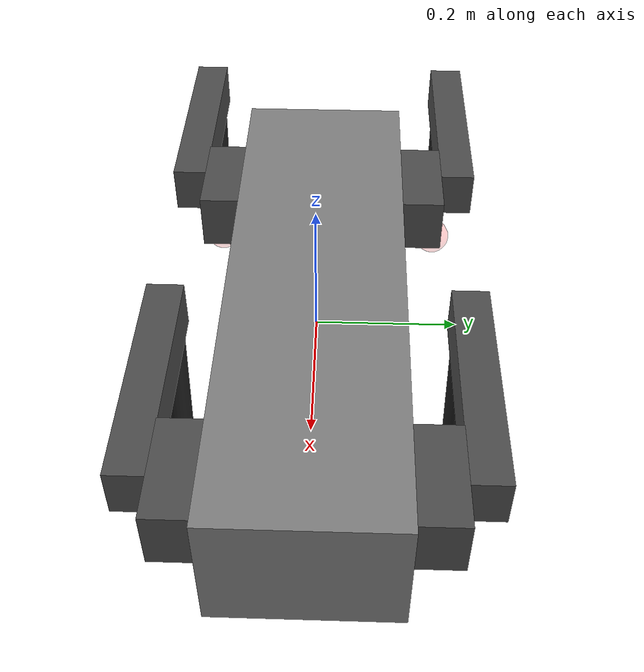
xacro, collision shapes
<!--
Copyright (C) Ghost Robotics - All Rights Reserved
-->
<?xml version="1.0" encoding="utf-8"?>
<!-- |    This document was autogenerated by xacro from C:/Gitlab-Runner/builds/7_uiAF6o/1/ghostrobotics/ghostsdkbuild/test_ws/src/controls/../SDK/urdf/vision60.urdf.xacro | -->
<!-- |    EDITING THIS FILE BY HAND IS NOT RECOMMENDED                                 | -->
<robot name="vision60" xmlns:xacro="http://www.ros.org/wiki/xacro">
  <!-- Define parameters -->
  <!-- body dynamic properties -->
  <!-- Toe -->
  <!-- Joint limits -->
  <!-- Define materials -->
  <material name="gray">
    <color rgba="0.5 0.5 0.5 1.0"/>
  </material>
  <material name="darkgray">
    <color rgba="0.3 0.3 0.3 1.0"/>
  </material>
  <material name="transparent">
    <color rgba="1.0 0.0 0.0 0.1"/>
  </material>
  <material name="blue">
    <color rgba="0 0 0.8 1"/>
  </material>
  <material name="black">
    <color rgba="0.1 0.1 0.1 1.0"/>
  </material>
  <material name="purple">
    <color rgba="0.5 0.0 0.5 1.0"/>
  </material>
  <material name="red">
    <color rgba="0.8 0.0 0.2 1.0"/>
  </material>
  <!-- Body -->
  <link name="body">
    <visual>
      <origin rpy="0 0 0" xyz="0 0 0"/>
      <geometry>
        <mesh filename="package://vision60_description/models/vision60/meshes/v5_body_decimated.stl" scale="1.0 1.0 1.0"/>
      </geometry>
      <material name="gray"/>
    </visual>
    <inertial>
      <mass value="25"/>
      <inertia ixx="0.0986" ixy="0" ixz="0" iyy="0.8105" iyz="0" izz="0.8369"/>
    </inertial>
    <!-- Just copy geometry for collision -->
    <collision>
      <origin rpy="0 0 0" xyz="0 0 0"/>
      <geometry>
        <box size="0.83 0.25 0.19"/>
      </geometry>
    </collision>
  </link>

  <gazebo reference="body">
    <gravity>true</gravity>
    <sensor name="imu_sensor" type="imu">
      <always_on>true</always_on>
      <visualize>true</visualize>
      <topic>__default_topic_</topic>
      <plugin filename="libgazebo_ros_imu_sensor.so" name="imu_plugin">
        <topicName>imu</topicName>
        <bodyName>body</bodyName>
        <updateRateHZ>500.0</updateRateHZ>
        <gaussianNoise>0.0</gaussianNoise>
        <xyzOffset>0 0 0</xyzOffset>
        <rpyOffset>0 0 0</rpyOffset>
        <frameName>body</frameName>
        <initialOrientationAsReference>true</initialOrientationAsReference>
      </plugin>
      <pose>0 0 0 0 0 0</pose>
    </sensor>
  </gazebo>
  <!-- Define our leg macro -->
  <!-- Our four legs -->
  <!-- Hip motor -->
  <link name="hip0">
    <visual>
      <origin rpy="0.0 0.0 0" xyz="0 0 0"/>
      <geometry>
        <mesh filename="package://vision60_description/models/vision60/meshes/v5_pod_decimated.stl" scale="1.0 1.0 1.0"/>
      </geometry>
      <material name="darkgray"/>
    </visual>
    <collision>
      <origin rpy="1.570796326795 0 0" xyz="-0.010000000000000009 0.019600000000000006 0"/>
      <geometry>
        <box size="0.15 0.09 0.15"/>
      </geometry>
    </collision>
    <inertial>
      <mass value="1.975"/>
      <inertia ixx="0.00891458" ixy="0" ixz="0" iyy="0.0100573" iyz="0" izz="0.01533698"/>
    </inertial>
  </link>
  <gazebo reference="hip0">
    <material>Gazebo/DarkGray</material>
  </gazebo>
  <!-- Abduction joint. Joint names are: 8 9 10 11 -->
  <joint name="8" type="revolute">
    <parent link="body"/>
    <child link="hip0"/>
    <axis xyz="1 0 0"/>
    <origin xyz="0.3075 0.1 0"/>
    <limit effort="375" lower="-0.43" upper="0.43" velocity="8.6"/>
    <dynamics damping="0.0" friction="0.0"/>
  </joint>
  <!-- Transmission elements required for Gazebo -->
  <transmission name="transmission_8">
    <type>transmission_interface/SimpleTransmission</type>
    <joint name="8">
      <hardwareInterface>hardware_interface/EffortJointInterface</hardwareInterface>
    </joint>
    <actuator name="motor_8">
      <hardwareInterface>EffortJointInterface</hardwareInterface>
      <mechanicalReduction>1</mechanicalReduction>
    </actuator>
  </transmission>
  <!-- Upper leg -->
  <link name="upper0">
    <visual>
      <origin rpy="0 0 0" xyz="0 0 0"/>
      <geometry>
        <mesh filename="package://vision60_description/models/vision60/meshes/v5_left_upper_decimated.stl" scale="1.0 1.0 1.0"/>
      </geometry>
      <material name="darkgray"/>
    </visual>
    <collision>
      <origin rpy="0 0 0" xyz="-0.17 0 0"/>
      <geometry>
        <box size="0.34 0.055 0.075"/>
      </geometry>
    </collision>
    <inertial>
      <mass value="2.525"/>
      <inertia ixx="0.0003125" ixy="0" ixz="0" iyy="0.0040625" iyz="0" izz="0.0040625"/>
    </inertial>
  </link>
  <gazebo reference="upper0">
    <material>Gazebo/DarkGray</material>
  </gazebo>
  <!-- Hip joint. (Motor to upper leg). Joint names are: 0 2 4 6 -->
  <joint name="0" type="revolute">
    <parent link="hip0"/>
    <child link="upper0"/>
    <axis xyz="0 -1 0"/>
    <origin xyz="0 0.1221 0"/>
    <!--  rpy="0 -0.3 0" -->
    <limit effort="87.5" lower="-6.28" upper="6.28" velocity="30"/>
    <dynamics damping="0.0" friction="0.0"/>
  </joint>
  <!-- Transmission elements required for Gazebo -->
  <transmission name="transmission_0">
    <type>transmission_interface/SimpleTransmission</type>
    <joint name="0">
      <hardwareInterface>hardware_interface/EffortJointInterface</hardwareInterface>
    </joint>
    <actuator name="motor_0">
      <hardwareInterface>EffortJointInterface</hardwareInterface>
      <mechanicalReduction>1</mechanicalReduction>
    </actuator>
  </transmission>
  <!-- Lower leg -->
  <link name="lower0">
    <visual>
      <origin rpy="0 -0.13 0" xyz="0 0 0"/>
      <geometry>
        <mesh filename="package://vision60_description/models/vision60/meshes/v5_lower_decimated.stl" scale="1.0 1.0 1.0"/>
      </geometry>
      <material name="black"/>
    </visual>
    <collision>
      <origin rpy="0 1.570796326795 0" xyz="0.17035 0 0"/>
      <geometry>
        <cylinder length="0.3407" radius="0.02"/>
      </geometry>
    </collision>
    <inertial>
      <mass value="0.375"/>
      <inertia ixx="0.00131075" ixy="0" ixz="0" iyy="0.00131075" iyz="0" izz="0.0001"/>
    </inertial>
  </link>
  <gazebo reference="lower0">
    <material>Gazebo/Black</material>
  </gazebo>
  <!-- Knee joint. Joint names are: 1 3 5 7 -->
  <joint name="1" type="revolute">
    <parent link="upper0"/>
    <child link="lower0"/>
    <axis xyz="0 1 0"/>
    <origin xyz="-0.34 0 0"/>
    <!--rpy="0 0.5 0"-->
    <limit effort="87.5" lower="0.3" upper="2.6" velocity="30"/>
    <dynamics damping="0.0" friction="0.0"/>
  </joint>
  <!-- Transmission elements required for Gazebo -->
  <transmission name="transmission_1">
    <type>transmission_interface/SimpleTransmission</type>
    <joint name="1">
      <hardwareInterface>hardware_interface/EffortJointInterface</hardwareInterface>
    </joint>
    <actuator name="motor_1">
      <hardwareInterface>EffortJointInterface</hardwareInterface>
      <mechanicalReduction>1</mechanicalReduction>
    </actuator>
  </transmission>
  <!-- Toe -->
  <link name="toe0">
    <contact>
      <friction_anchor/>
      <stiffness value="30000.0"/>
      <damping value="1000.0"/>
      <rolling_friction value="0"/>
      <spinning_friction value="0.04"/>
      <lateral_friction value="3.0"/>
    </contact>
    <visual>
      <origin rpy="0 0 0" xyz="0 0 0"/>
      <geometry>
        <sphere radius="0.035"/>
      </geometry>
      <material name="transparent"/>
    </visual>
    <collision>
      <origin rpy="0 0 0" xyz="0 0 0"/>
      <geometry>
        <sphere radius="0.035"/>
      </geometry>
    </collision>
    <inertial>
      <mass value="0.15"/>
      <inertia ixx="0.000025" ixy="0" ixz="0" iyy="0.000025" iyz="0" izz="0.000025"/>
    </inertial>
  </link>
  <gazebo reference="toe0">
    <material>Gazebo/Transparent</material>
    <collision>
      <surface>
        <bounce>
          <restitution_coefficient>0</restitution_coefficient>
          <threshold>1e+06</threshold>
        </bounce>
        <friction>
          <torsional>
            <coefficient>0.3</coefficient>
          </torsional>
          <ode>
            <mu>20.0</mu>
            <mu2>10.0</mu2>
          </ode>
          <bullet>
            <rolling_friction>0.3</rolling_friction>
            <friction2>10.0</friction2>
          </bullet>
        </friction>
        <contact>
          <bullet>
            <kp>30000.0</kp>
            <kd>1000.0</kd>
          </bullet>
          <ode>
            <kp>30000.0</kp>
            <kd>1000.0</kd>
          </ode>
        </contact>
      </surface>
    </collision>
  </gazebo>
  <joint name="jtoe0" type="fixed">
    <parent link="lower0"/>
    <child link="toe0"/>
    <origin xyz="0.3407 0 0"/>
    <dynamics damping="0.0" friction="0.0"/>
  </joint>
  <!-- Hip motor -->
  <link name="hip1">
    <visual>
      <origin rpy="0.0 -3.14159265359 0" xyz="0 0 0"/>
      <geometry>
        <mesh filename="package://vision60_description/models/vision60/meshes/v5_pod_decimated.stl" scale="1.0 1.0 1.0"/>
      </geometry>
      <material name="darkgray"/>
    </visual>
    <collision>
      <origin rpy="1.570796326795 0 0" xyz="0.010000000000000009 0.019600000000000006 0"/>
      <geometry>
        <box size="0.15 0.09 0.15"/>
      </geometry>
    </collision>
    <inertial>
      <mass value="1.975"/>
      <inertia ixx="0.00891458" ixy="0" ixz="0" iyy="0.0100573" iyz="0" izz="0.01533698"/>
    </inertial>
  </link>
  <gazebo reference="hip1">
    <material>Gazebo/DarkGray</material>
  </gazebo>
  <!-- Abduction joint. Joint names are: 8 9 10 11 -->
  <joint name="9" type="revolute">
    <parent link="body"/>
    <child link="hip1"/>
    <axis xyz="1 0 0"/>
    <origin xyz="-0.3075 0.1 0"/>
    <limit effort="375" lower="-0.43" upper="0.43" velocity="8.6"/>
    <dynamics damping="0.0" friction="0.0"/>
  </joint>
  <!-- Transmission elements required for Gazebo -->
  <transmission name="transmission_9">
    <type>transmission_interface/SimpleTransmission</type>
    <joint name="9">
      <hardwareInterface>hardware_interface/EffortJointInterface</hardwareInterface>
    </joint>
    <actuator name="motor_9">
      <hardwareInterface>EffortJointInterface</hardwareInterface>
      <mechanicalReduction>1</mechanicalReduction>
    </actuator>
  </transmission>
  <!-- Upper leg -->
  <link name="upper1">
    <visual>
      <origin rpy="0 0 0" xyz="0 0 0"/>
      <geometry>
        <mesh filename="package://vision60_description/models/vision60/meshes/v5_left_upper_decimated.stl" scale="1.0 1.0 1.0"/>
      </geometry>
      <material name="darkgray"/>
    </visual>
    <collision>
      <origin rpy="0 0 0" xyz="-0.17 0 0"/>
      <geometry>
        <box size="0.34 0.055 0.075"/>
      </geometry>
    </collision>
    <inertial>
      <mass value="2.525"/>
      <inertia ixx="0.0003125" ixy="0" ixz="0" iyy="0.0040625" iyz="0" izz="0.0040625"/>
    </inertial>
  </link>
  <gazebo reference="upper1">
    <material>Gazebo/DarkGray</material>
  </gazebo>
  <!-- Hip joint. (Motor to upper leg). Joint names are: 0 2 4 6 -->
  <joint name="2" type="revolute">
    <parent link="hip1"/>
    <child link="upper1"/>
    <axis xyz="0 -1 0"/>
    <origin xyz="0 0.1221 0"/>
    <!--  rpy="0 -0.3 0" -->
    <limit effort="87.5" lower="-3.8" upper="2.27" velocity="30"/>
    <dynamics damping="0.0" friction="0.0"/>
  </joint>
  <!-- Transmission elements required for Gazebo -->
  <transmission name="transmission_2">
    <type>transmission_interface/SimpleTransmission</type>
    <joint name="2">
      <hardwareInterface>hardware_interface/EffortJointInterface</hardwareInterface>
    </joint>
    <actuator name="motor_2">
      <hardwareInterface>EffortJointInterface</hardwareInterface>
      <mechanicalReduction>1</mechanicalReduction>
    </actuator>
  </transmission>
  <!-- Lower leg -->
  <link name="lower1">
    <visual>
      <origin rpy="0 -0.13 0" xyz="0 0 0"/>
      <geometry>
        <mesh filename="package://vision60_description/models/vision60/meshes/v5_lower_decimated.stl" scale="1.0 1.0 1.0"/>
      </geometry>
      <material name="black"/>
    </visual>
    <collision>
      <origin rpy="0 1.570796326795 0" xyz="0.17035 0 0"/>
      <geometry>
        <cylinder length="0.3407" radius="0.02"/>
      </geometry>
    </collision>
    <inertial>
      <mass value="0.375"/>
      <inertia ixx="0.00131075" ixy="0" ixz="0" iyy="0.00131075" iyz="0" izz="0.0001"/>
    </inertial>
  </link>
  <gazebo reference="lower1">
    <material>Gazebo/Black</material>
  </gazebo>
  <!-- Knee joint. Joint names are: 1 3 5 7 -->
  <joint name="3" type="revolute">
    <parent link="upper1"/>
    <child link="lower1"/>
    <axis xyz="0 1 0"/>
    <origin xyz="-0.34 0 0"/>
    <!--rpy="0 0.5 0"-->
    <limit effort="87.5" lower="0.3" upper="2.6" velocity="30"/>
    <dynamics damping="0.0" friction="0.0"/>
  </joint>
  <!-- Transmission elements required for Gazebo -->
  <transmission name="transmission_3">
    <type>transmission_interface/SimpleTransmission</type>
    <joint name="3">
      <hardwareInterface>hardware_interface/EffortJointInterface</hardwareInterface>
    </joint>
    <actuator name="motor_3">
      <hardwareInterface>EffortJointInterface</hardwareInterface>
      <mechanicalReduction>1</mechanicalReduction>
    </actuator>
  </transmission>
  <!-- Toe -->
  <link name="toe1">
    <contact>
      <friction_anchor/>
      <stiffness value="30000.0"/>
      <damping value="1000.0"/>
      <rolling_friction value="0"/>
      <spinning_friction value="0.04"/>
      <lateral_friction value="3.0"/>
    </contact>
    <visual>
      <origin rpy="0 0 0" xyz="0 0 0"/>
      <geometry>
        <sphere radius="0.035"/>
      </geometry>
      <material name="transparent"/>
    </visual>
    <collision>
      <origin rpy="0 0 0" xyz="0 0 0"/>
      <geometry>
        <sphere radius="0.035"/>
      </geometry>
    </collision>
    <inertial>
      <mass value="0.15"/>
      <inertia ixx="0.000025" ixy="0" ixz="0" iyy="0.000025" iyz="0" izz="0.000025"/>
    </inertial>
  </link>
  <gazebo reference="toe1">
    <material>Gazebo/Transparent</material>
    <collision>
      <surface>
        <bounce>
          <restitution_coefficient>0</restitution_coefficient>
          <threshold>1e+06</threshold>
        </bounce>
        <friction>
          <torsional>
            <coefficient>0.3</coefficient>
          </torsional>
          <ode>
            <mu>20.0</mu>
            <mu2>10.0</mu2>
          </ode>
          <bullet>
            <rolling_friction>0.3</rolling_friction>
            <friction2>10.0</friction2>
          </bullet>
        </friction>
        <contact>
          <bullet>
            <kp>30000.0</kp>
            <kd>1000.0</kd>
          </bullet>
          <ode>
            <kp>30000.0</kp>
            <kd>1000.0</kd>
          </ode>
        </contact>
      </surface>
    </collision>
  </gazebo>
  <joint name="jtoe1" type="fixed">
    <parent link="lower1"/>
    <child link="toe1"/>
    <origin xyz="0.3407 0 0"/>
    <dynamics damping="0.0" friction="0.0"/>
  </joint>
  <!-- Hip motor -->
  <link name="hip2">
    <visual>
      <origin rpy="-3.14159265359 0.0 0" xyz="0 0 0"/>
      <geometry>
        <mesh filename="package://vision60_description/models/vision60/meshes/v5_pod_decimated.stl" scale="1.0 1.0 1.0"/>
      </geometry>
      <material name="darkgray"/>
    </visual>
    <collision>
      <origin rpy="1.570796326795 0 0" xyz="-0.010000000000000009 -0.019600000000000006 0"/>
      <geometry>
        <box size="0.15 0.09 0.15"/>
      </geometry>
    </collision>
    <inertial>
      <mass value="1.975"/>
      <inertia ixx="0.00891458" ixy="0" ixz="0" iyy="0.0100573" iyz="0" izz="0.01533698"/>
    </inertial>
  </link>
  <gazebo reference="hip2">
    <material>Gazebo/DarkGray</material>
  </gazebo>
  <!-- Abduction joint. Joint names are: 8 9 10 11 -->
  <joint name="10" type="revolute">
    <parent link="body"/>
    <child link="hip2"/>
    <axis xyz="1 0 0"/>
    <origin xyz="0.3075 -0.1 0"/>
    <limit effort="375" lower="-0.43" upper="0.43" velocity="8.6"/>
    <dynamics damping="0.0" friction="0.0"/>
  </joint>
  <!-- Transmission elements required for Gazebo -->
  <transmission name="transmission_10">
    <type>transmission_interface/SimpleTransmission</type>
    <joint name="10">
      <hardwareInterface>hardware_interface/EffortJointInterface</hardwareInterface>
    </joint>
    <actuator name="motor_10">
      <hardwareInterface>EffortJointInterface</hardwareInterface>
      <mechanicalReduction>1</mechanicalReduction>
    </actuator>
  </transmission>
  <!-- Upper leg -->
  <link name="upper2">
    <visual>
      <origin rpy="0 0 0" xyz="0 0 0"/>
      <geometry>
        <mesh filename="package://vision60_description/models/vision60/meshes/v5_right_upper_decimated.stl" scale="1.0 1.0 1.0"/>
      </geometry>
      <material name="darkgray"/>
    </visual>
    <collision>
      <origin rpy="0 0 0" xyz="-0.17 0 0"/>
      <geometry>
        <box size="0.34 0.055 0.075"/>
      </geometry>
    </collision>
    <inertial>
      <mass value="2.525"/>
      <inertia ixx="0.0003125" ixy="0" ixz="0" iyy="0.0040625" iyz="0" izz="0.0040625"/>
    </inertial>
  </link>
  <gazebo reference="upper2">
    <material>Gazebo/DarkGray</material>
  </gazebo>
  <!-- Hip joint. (Motor to upper leg). Joint names are: 0 2 4 6 -->
  <joint name="4" type="revolute">
    <parent link="hip2"/>
    <child link="upper2"/>
    <axis xyz="0 -1 0"/>
    <origin xyz="0 -0.1221 0"/>
    <!--  rpy="0 -0.3 0" -->
    <limit effort="87.5" lower="-6.28" upper="6.28" velocity="30"/>
    <dynamics damping="0.0" friction="0.0"/>
  </joint>
  <!-- Transmission elements required for Gazebo -->
  <transmission name="transmission_4">
    <type>transmission_interface/SimpleTransmission</type>
    <joint name="4">
      <hardwareInterface>hardware_interface/EffortJointInterface</hardwareInterface>
    </joint>
    <actuator name="motor_4">
      <hardwareInterface>EffortJointInterface</hardwareInterface>
      <mechanicalReduction>1</mechanicalReduction>
    </actuator>
  </transmission>
  <!-- Lower leg -->
  <link name="lower2">
    <visual>
      <origin rpy="0 -0.13 0" xyz="0 0 0"/>
      <geometry>
        <mesh filename="package://vision60_description/models/vision60/meshes/v5_lower_decimated.stl" scale="1.0 1.0 1.0"/>
      </geometry>
      <material name="black"/>
    </visual>
    <collision>
      <origin rpy="0 1.570796326795 0" xyz="0.17035 0 0"/>
      <geometry>
        <cylinder length="0.3407" radius="0.02"/>
      </geometry>
    </collision>
    <inertial>
      <mass value="0.375"/>
      <inertia ixx="0.00131075" ixy="0" ixz="0" iyy="0.00131075" iyz="0" izz="0.0001"/>
    </inertial>
  </link>
  <gazebo reference="lower2">
    <material>Gazebo/Black</material>
  </gazebo>
  <!-- Knee joint. Joint names are: 1 3 5 7 -->
  <joint name="5" type="revolute">
    <parent link="upper2"/>
    <child link="lower2"/>
    <axis xyz="0 1 0"/>
    <origin xyz="-0.34 0 0"/>
    <!--rpy="0 0.5 0"-->
    <limit effort="87.5" lower="0.3" upper="2.6" velocity="30"/>
    <dynamics damping="0.0" friction="0.0"/>
  </joint>
  <!-- Transmission elements required for Gazebo -->
  <transmission name="transmission_5">
    <type>transmission_interface/SimpleTransmission</type>
    <joint name="5">
      <hardwareInterface>hardware_interface/EffortJointInterface</hardwareInterface>
    </joint>
    <actuator name="motor_5">
      <hardwareInterface>EffortJointInterface</hardwareInterface>
      <mechanicalReduction>1</mechanicalReduction>
    </actuator>
  </transmission>
  <!-- Toe -->
  <link name="toe2">
    <contact>
      <friction_anchor/>
      <stiffness value="30000.0"/>
      <damping value="1000.0"/>
      <rolling_friction value="0"/>
      <spinning_friction value="0.04"/>
      <lateral_friction value="3.0"/>
    </contact>
    <visual>
      <origin rpy="0 0 0" xyz="0 0 0"/>
      <geometry>
        <sphere radius="0.035"/>
      </geometry>
      <material name="transparent"/>
    </visual>
    <collision>
      <origin rpy="0 0 0" xyz="0 0 0"/>
      <geometry>
        <sphere radius="0.035"/>
      </geometry>
    </collision>
    <inertial>
      <mass value="0.15"/>
      <inertia ixx="0.000025" ixy="0" ixz="0" iyy="0.000025" iyz="0" izz="0.000025"/>
    </inertial>
  </link>
  <gazebo reference="toe2">
    <material>Gazebo/Transparent</material>
    <collision>
      <surface>
        <bounce>
          <restitution_coefficient>0</restitution_coefficient>
          <threshold>1e+06</threshold>
        </bounce>
        <friction>
          <torsional>
            <coefficient>0.3</coefficient>
          </torsional>
          <ode>
            <mu>20.0</mu>
            <mu2>10.0</mu2>
          </ode>
          <bullet>
            <rolling_friction>0.3</rolling_friction>
            <friction2>10.0</friction2>
          </bullet>
        </friction>
        <contact>
          <bullet>
            <kp>30000.0</kp>
            <kd>1000.0</kd>
          </bullet>
          <ode>
            <kp>30000.0</kp>
            <kd>1000.0</kd>
          </ode>
        </contact>
      </surface>
    </collision>
  </gazebo>
  <joint name="jtoe2" type="fixed">
    <parent link="lower2"/>
    <child link="toe2"/>
    <origin xyz="0.3407 0 0"/>
    <dynamics damping="0.0" friction="0.0"/>
  </joint>
  <!-- Hip motor -->
  <link name="hip3">
    <visual>
      <origin rpy="-3.14159265359 -3.14159265359 0" xyz="0 0 0"/>
      <geometry>
        <mesh filename="package://vision60_description/models/vision60/meshes/v5_pod_decimated.stl" scale="1.0 1.0 1.0"/>
      </geometry>
      <material name="darkgray"/>
    </visual>
    <collision>
      <origin rpy="1.570796326795 0 0" xyz="0.010000000000000009 -0.019600000000000006 0"/>
      <geometry>
        <box size="0.15 0.09 0.15"/>
      </geometry>
    </collision>
    <inertial>
      <mass value="1.975"/>
      <inertia ixx="0.00891458" ixy="0" ixz="0" iyy="0.0100573" iyz="0" izz="0.01533698"/>
    </inertial>
  </link>
  <gazebo reference="hip3">
    <material>Gazebo/DarkGray</material>
  </gazebo>
  <!-- Abduction joint. Joint names are: 8 9 10 11 -->
  <joint name="11" type="revolute">
    <parent link="body"/>
    <child link="hip3"/>
    <axis xyz="1 0 0"/>
    <origin xyz="-0.3075 -0.1 0"/>
    <limit effort="375" lower="-0.43" upper="0.43" velocity="8.6"/>
    <dynamics damping="0.0" friction="0.0"/>
  </joint>
  <!-- Transmission elements required for Gazebo -->
  <transmission name="transmission_11">
    <type>transmission_interface/SimpleTransmission</type>
    <joint name="11">
      <hardwareInterface>hardware_interface/EffortJointInterface</hardwareInterface>
    </joint>
    <actuator name="motor_11">
      <hardwareInterface>EffortJointInterface</hardwareInterface>
      <mechanicalReduction>1</mechanicalReduction>
    </actuator>
  </transmission>
  <!-- Upper leg -->
  <link name="upper3">
    <visual>
      <origin rpy="0 0 0" xyz="0 0 0"/>
      <geometry>
        <mesh filename="package://vision60_description/models/vision60/meshes/v5_right_upper_decimated.stl" scale="1.0 1.0 1.0"/>
      </geometry>
      <material name="darkgray"/>
    </visual>
    <collision>
      <origin rpy="0 0 0" xyz="-0.17 0 0"/>
      <geometry>
        <box size="0.34 0.055 0.075"/>
      </geometry>
    </collision>
    <inertial>
      <mass value="2.525"/>
      <inertia ixx="0.0003125" ixy="0" ixz="0" iyy="0.0040625" iyz="0" izz="0.0040625"/>
    </inertial>
  </link>
  <gazebo reference="upper3">
    <material>Gazebo/DarkGray</material>
  </gazebo>
  <!-- Hip joint. (Motor to upper leg). Joint names are: 0 2 4 6 -->
  <joint name="6" type="revolute">
    <parent link="hip3"/>
    <child link="upper3"/>
    <axis xyz="0 -1 0"/>
    <origin xyz="0 -0.1221 0"/>
    <!--  rpy="0 -0.3 0" -->
    <limit effort="87.5" lower="-3.8" upper="2.27" velocity="30"/>
    <dynamics damping="0.0" friction="0.0"/>
  </joint>
  <!-- Transmission elements required for Gazebo -->
  <transmission name="transmission_6">
    <type>transmission_interface/SimpleTransmission</type>
    <joint name="6">
      <hardwareInterface>hardware_interface/EffortJointInterface</hardwareInterface>
    </joint>
    <actuator name="motor_6">
      <hardwareInterface>EffortJointInterface</hardwareInterface>
      <mechanicalReduction>1</mechanicalReduction>
    </actuator>
  </transmission>
  <!-- Lower leg -->
  <link name="lower3">
    <visual>
      <origin rpy="0 -0.13 0" xyz="0 0 0"/>
      <geometry>
        <mesh filename="package://vision60_description/models/vision60/meshes/v5_lower_decimated.stl" scale="1.0 1.0 1.0"/>
      </geometry>
      <material name="black"/>
    </visual>
    <collision>
      <origin rpy="0 1.570796326795 0" xyz="0.17035 0 0"/>
      <geometry>
        <cylinder length="0.3407" radius="0.02"/>
      </geometry>
    </collision>
    <inertial>
      <mass value="0.375"/>
      <inertia ixx="0.00131075" ixy="0" ixz="0" iyy="0.00131075" iyz="0" izz="0.0001"/>
    </inertial>
  </link>
  <gazebo reference="lower3">
    <material>Gazebo/Black</material>
  </gazebo>
  <!-- Knee joint. Joint names are: 1 3 5 7 -->
  <joint name="7" type="revolute">
    <parent link="upper3"/>
    <child link="lower3"/>
    <axis xyz="0 1 0"/>
    <origin xyz="-0.34 0 0"/>
    <!--rpy="0 0.5 0"-->
    <limit effort="87.5" lower="0.3" upper="2.6" velocity="30"/>
    <dynamics damping="0.0" friction="0.0"/>
  </joint>
  <!-- Transmission elements required for Gazebo -->
  <transmission name="transmission_7">
    <type>transmission_interface/SimpleTransmission</type>
    <joint name="7">
      <hardwareInterface>hardware_interface/EffortJointInterface</hardwareInterface>
    </joint>
    <actuator name="motor_7">
      <hardwareInterface>EffortJointInterface</hardwareInterface>
      <mechanicalReduction>1</mechanicalReduction>
    </actuator>
  </transmission>
  <!-- Toe -->
  <link name="toe3">
    <contact>
      <friction_anchor/>
      <stiffness value="30000.0"/>
      <damping value="1000.0"/>
      <rolling_friction value="0"/>
      <spinning_friction value="0.04"/>
      <lateral_friction value="3.0"/>
    </contact>
    <visual>
      <origin rpy="0 0 0" xyz="0 0 0"/>
      <geometry>
        <sphere radius="0.035"/>
      </geometry>
      <material name="transparent"/>
    </visual>
    <collision>
      <origin rpy="0 0 0" xyz="0 0 0"/>
      <geometry>
        <sphere radius="0.035"/>
      </geometry>
    </collision>
    <inertial>
      <mass value="0.15"/>
      <inertia ixx="0.000025" ixy="0" ixz="0" iyy="0.000025" iyz="0" izz="0.000025"/>
    </inertial>
  </link>
  <gazebo reference="toe3">
    <material>Gazebo/Transparent</material>
    <collision>
      <surface>
        <bounce>
          <restitution_coefficient>0</restitution_coefficient>
          <threshold>1e+06</threshold>
        </bounce>
        <friction>
          <torsional>
            <coefficient>0.3</coefficient>
          </torsional>
          <ode>
            <mu>20.0</mu>
            <mu2>10.0</mu2>
          </ode>
          <bullet>
            <rolling_friction>0.3</rolling_friction>
            <friction2>10.0</friction2>
          </bullet>
        </friction>
        <contact>
          <bullet>
            <kp>30000.0</kp>
            <kd>1000.0</kd>
          </bullet>
          <ode>
            <kp>30000.0</kp>
            <kd>1000.0</kd>
          </ode>
        </contact>
      </surface>
    </collision>
  </gazebo>
  <joint name="jtoe3" type="fixed">
    <parent link="lower3"/>
    <child link="toe3"/>
    <origin xyz="0.3407 0 0"/>
    <dynamics damping="0.0" friction="0.0"/>
  </joint>

  <ros2_control name="GazeboSimSystem" type="system">
    <hardware>
      <plugin>gz_ros2_control/GazeboSimSystem</plugin>
    </hardware>
    <joint name="0">
      <command_interface name="effort" />
      <state_interface name="velocity" />
      <state_interface name="position" />
    </joint>
    <joint name="1">
      <command_interface name="effort" />
      <state_interface name="velocity" />
      <state_interface name="position" />
    </joint>
    <joint name="2">
      <command_interface name="effort" />
      <state_interface name="velocity" />
      <state_interface name="position" />
    </joint>
    <joint name="3">
      <command_interface name="effort" />
      <state_interface name="velocity" />
      <state_interface name="position" />
    </joint>
    <joint name="4">
      <command_interface name="effort" />
      <state_interface name="velocity" />
      <state_interface name="position" />
    </joint>
    <joint name="5">
      <command_interface name="effort" />
      <state_interface name="velocity" />
      <state_interface name="position" />
    </joint>
    <joint name="6">
      <command_interface name="effort" />
      <state_interface name="velocity" />
      <state_interface name="position" />
    </joint>
    <joint name="7">
      <command_interface name="effort" />
      <state_interface name="velocity" />
      <state_interface name="position" />
    </joint>
    <joint name="8">
      <command_interface name="effort" />
      <state_interface name="velocity" />
      <state_interface name="position" />
    </joint>
    <joint name="9">
      <command_interface name="effort" />
      <state_interface name="velocity" />
      <state_interface name="position" />
    </joint>
    <joint name="10">
      <command_interface name="effort" />
      <state_interface name="velocity" />
      <state_interface name="position" />
    </joint>
    <joint name="11">
      <command_interface name="effort" />
      <state_interface name="velocity" />
      <state_interface name="position" />
    </joint>
  </ros2_control>

  <link name="cmu_text">
    <visual>
      <origin xyz="0 0 0" rpy="0 0 0" />
      <geometry>
        <mesh filename="package://objects_description/models/cmu_text/meshes/Spirit40_CMU_Text_transformed.stl" scale="0.8 1 0.8" />
      </geometry>
    </visual>
    <inertial>
      <mass value="0.0001" />
      <inertia ixx="1e-08" ixy="0" ixz="0" iyy="1e-08" iyz="0" izz="1e-08" />
    </inertial>
  </link>
  <joint name="cmu_text_joint" type="fixed">
    <parent link="body" />
    <child link="cmu_text" />
    <origin xyz="0 0 -0.005" rpy="0 0 0" />
  </joint>
</robot>
